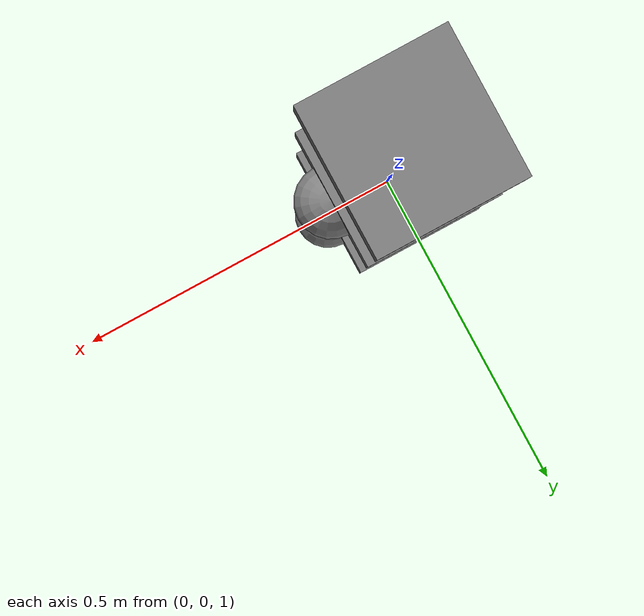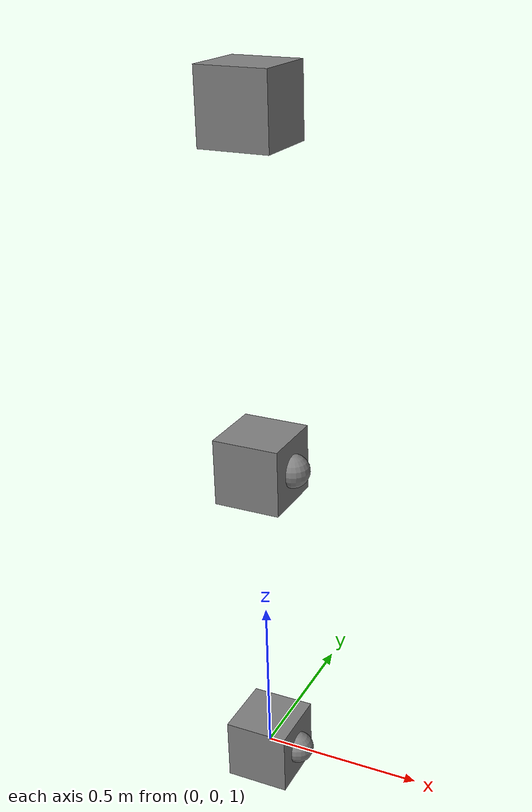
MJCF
<mujoco>
  <worldbody>
    <!-- Body with hyphens in name -->
    <body name="body-with-hyphens" pos="0 0 1">
      <freejoint/>
      <geom name="hyphen_geom1" type="box" size="0.1 0.1 0.1" pos="0 0 0"/>
      <geom name="hyphen_geom2" type="sphere" size="0.05" pos="0.1 0 0"/>
    </body>

    <!-- Another body with hyphens -->
    <body name="another-hyphen-body" pos="0 0 2">
      <freejoint/>
      <geom name="another_geom1" type="box" size="0.1 0.1 0.1" pos="0 0 0"/>
      <geom name="another_geom2" type="sphere" size="0.05" pos="0.1 0 0"/>
    </body>

    <!-- Body without hyphens (should still collide with hyphenated bodies) -->
    <body name="normal_body" pos="0 0 3">
      <freejoint/>
      <geom name="normal_geom1" type="box" size="0.1 0.1 0.1" pos="0 0 0"/>
    </body>
  </worldbody>

  <contact>
    <!-- Exclude collisions between the two hyphenated bodies -->
    <exclude body1="body-with-hyphens" body2="another-hyphen-body"/>
  </contact>
</mujoco>
